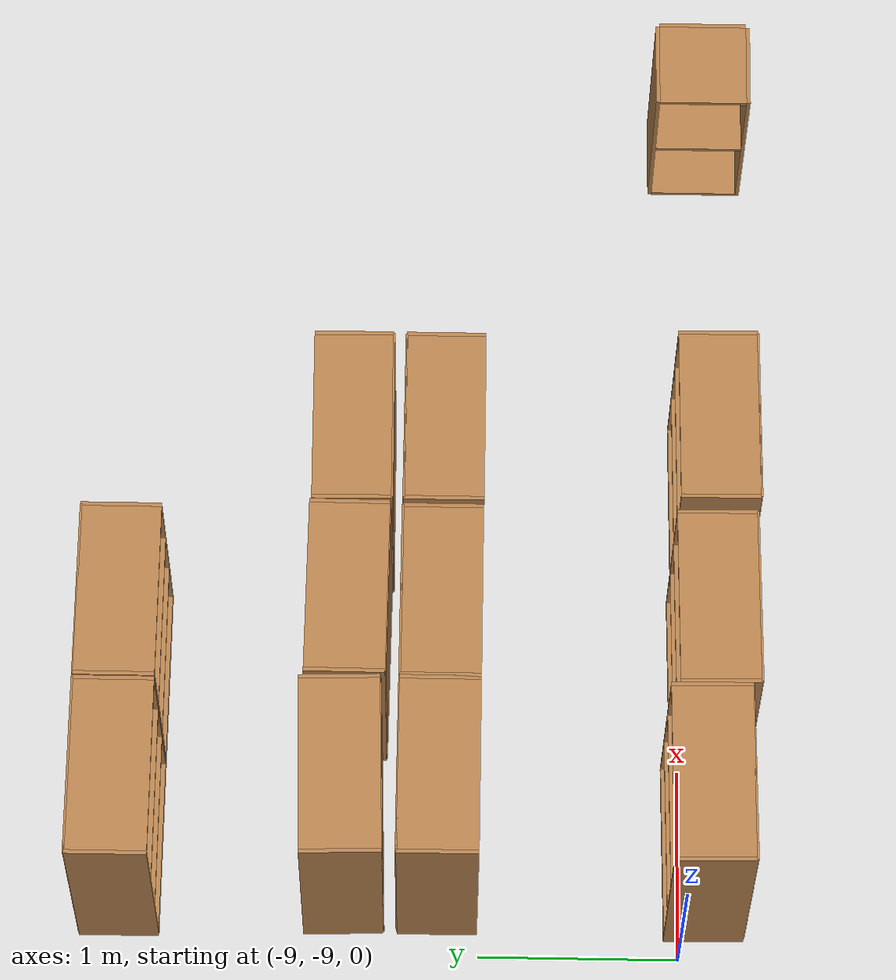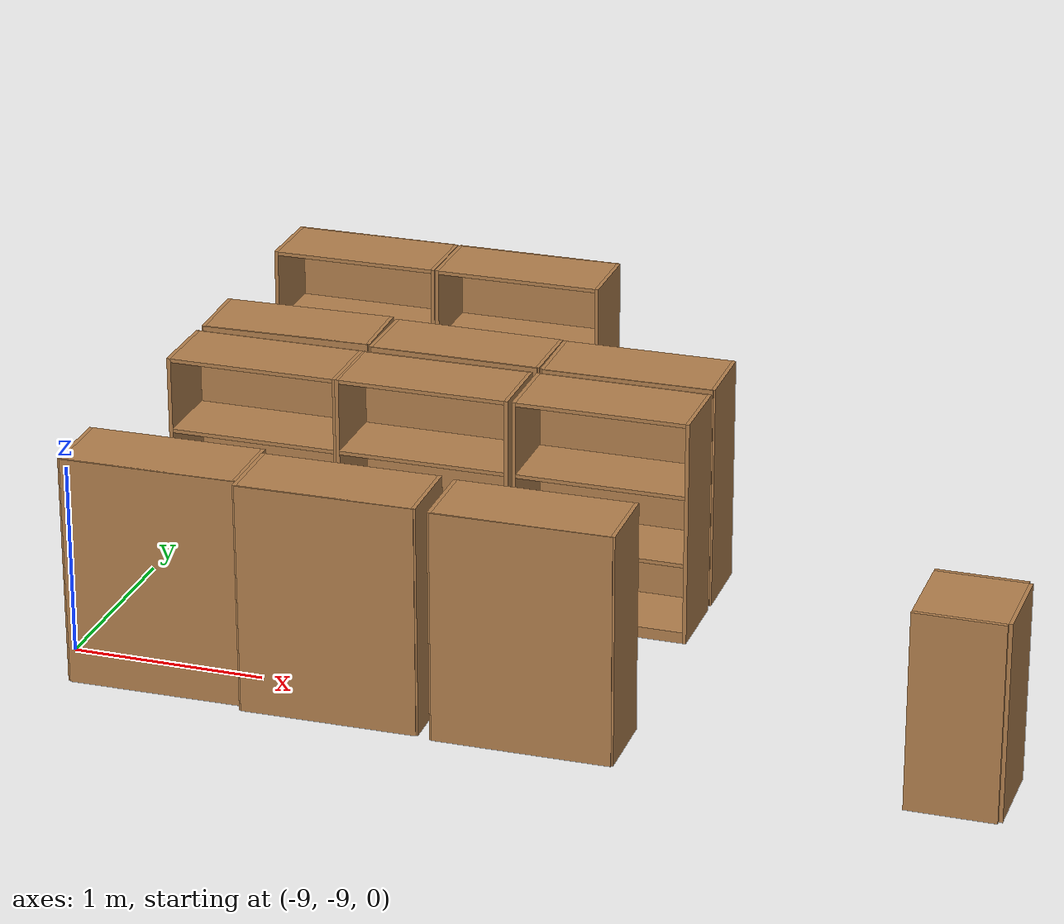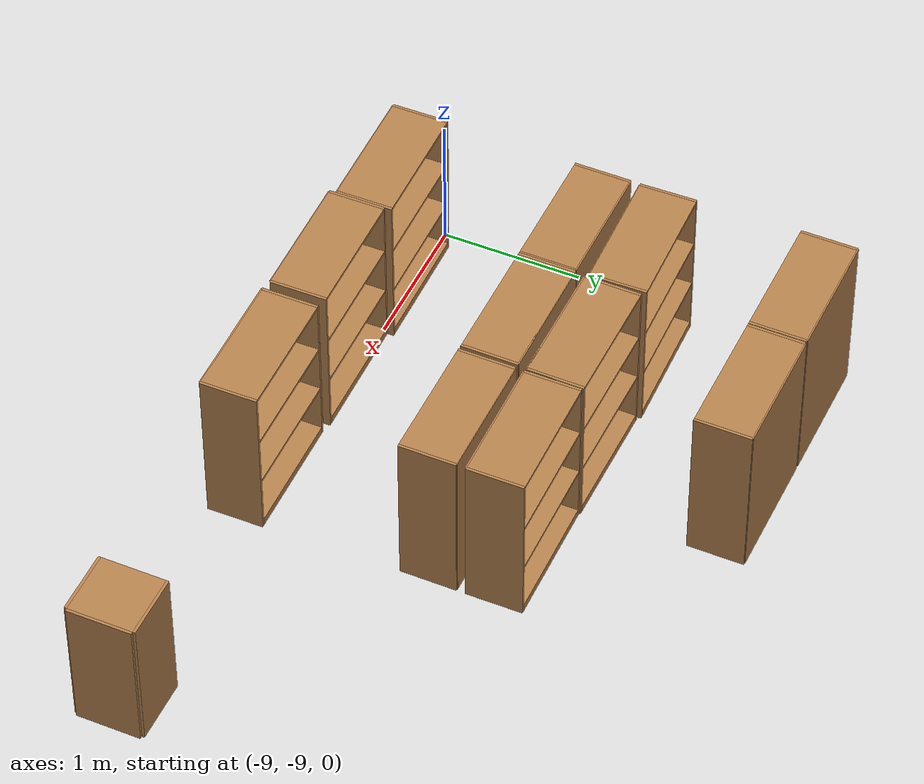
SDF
<sdf version="1.7">
 <world name="default">
  <model name="bookshelf_2">
   <static>1</static>
   <link name="link">
    <inertial><mass>1</mass></inertial>
    <collision name="back">
     <pose>0 0.005 0.6 0 -0 0</pose>
     <geometry><box><size>0.9 0.01 1.2</size></box></geometry>
    </collision>
    <visual name="visual1">
     <pose>0 0.005 0.6 0 -0 0</pose>
     <geometry><box><size>0.9 0.01 1.2</size></box></geometry>
     <material>
      <script><uri>file://media/materials/scripts/gazebo.material</uri><name>Gazebo/Wood</name></script>
     </material>
    </visual>
    <collision name="left_side">
     <pose>0.45 -0.195 0.6 0 -0 0</pose>
     <geometry><box><size>0.02 0.4 1.2</size></box></geometry>
    </collision>
    <visual name="visual2">
     <pose>0.45 -0.195 0.6 0 -0 0</pose>
     <geometry><box><size>0.02 0.4 1.2</size></box></geometry>
     <material>
      <script><uri>file://media/materials/scripts/gazebo.material</uri><name>Gazebo/Wood</name></script>
     </material>
    </visual>
    <collision name="right_side">
     <pose>-0.45 -0.195 0.6 0 -0 0</pose>
     <geometry><box><size>0.02 0.4 1.2</size></box></geometry>
    </collision>
    <visual name="visual3">
     <pose>-0.45 -0.195 0.6 0 -0 0</pose>
     <geometry><box><size>0.02 0.4 1.2</size></box></geometry>
     <material>
      <script><uri>file://media/materials/scripts/gazebo.material</uri><name>Gazebo/Wood</name></script>
     </material>
    </visual>
    <collision name="bottom">
     <pose>0 -0.195 0.03 0 -0 0</pose>
     <geometry><box><size>0.88 0.4 0.06</size></box></geometry>
    </collision>
    <visual name="visual4">
     <pose>0 -0.195 0.03 0 -0 0</pose>
     <geometry><box><size>0.88 0.4 0.06</size></box></geometry>
     <material>
      <script><uri>file://media/materials/scripts/gazebo.material</uri><name>Gazebo/Wood</name></script>
     </material>
    </visual>
    <collision name="top">
     <pose>0 -0.195 1.19 0 -0 0</pose>
     <geometry><box><size>0.88 0.4 0.02</size></box></geometry>
    </collision>
    <visual name="visual5">
     <pose>0 -0.195 1.19 0 -0 0</pose>
     <geometry><box><size>0.88 0.4 0.02</size></box></geometry>
     <material>
      <script><uri>file://media/materials/scripts/gazebo.material</uri><name>Gazebo/Wood</name></script>
     </material>
    </visual>
    <collision name="low_shelf">
     <pose>0 -0.195 0.43 0 -0 0</pose>
     <geometry><box><size>0.88 0.4 0.02</size></box></geometry>
    </collision>
    <visual name="visual6">
     <pose>0 -0.195 0.43 0 -0 0</pose>
     <geometry><box><size>0.88 0.4 0.02</size></box></geometry>
     <material>
      <script><uri>file://media/materials/scripts/gazebo.material</uri><name>Gazebo/Wood</name></script>
     </material>
    </visual>
    <collision name="high_shelf">
     <pose>0 -0.195 0.8 0 -0 0</pose>
     <geometry><box><size>0.88 0.4 0.02</size></box></geometry>
    </collision>
    <visual name="visual7">
     <pose>0 -0.195 0.8 0 -0 0</pose>
     <geometry><box><size>0.88 0.4 0.02</size></box></geometry>
     <material>
      <script><uri>file://media/materials/scripts/gazebo.material</uri><name>Gazebo/Wood</name></script>
     </material>
    </visual>
   </link>
   <pose>-8.45393 -6.00213 0 0 -0 0</pose>
  </model>
  <model name="bookshelf_3">
   <static>1</static>
   <link name="link">
    <inertial><mass>1</mass></inertial>
    <collision name="back">
     <pose>0 0.005 0.6 0 -0 0</pose>
     <geometry><box><size>0.9 0.01 1.2</size></box></geometry>
    </collision>
    <visual name="visual1">
     <pose>0 0.005 0.6 0 -0 0</pose>
     <geometry><box><size>0.9 0.01 1.2</size></box></geometry>
     <material>
      <script><uri>file://media/materials/scripts/gazebo.material</uri><name>Gazebo/Wood</name></script>
     </material>
    </visual>
    <collision name="left_side">
     <pose>0.45 -0.195 0.6 0 -0 0</pose>
     <geometry><box><size>0.02 0.4 1.2</size></box></geometry>
    </collision>
    <visual name="visual2">
     <pose>0.45 -0.195 0.6 0 -0 0</pose>
     <geometry><box><size>0.02 0.4 1.2</size></box></geometry>
     <material>
      <script><uri>file://media/materials/scripts/gazebo.material</uri><name>Gazebo/Wood</name></script>
     </material>
    </visual>
    <collision name="right_side">
     <pose>-0.45 -0.195 0.6 0 -0 0</pose>
     <geometry><box><size>0.02 0.4 1.2</size></box></geometry>
    </collision>
    <visual name="visual3">
     <pose>-0.45 -0.195 0.6 0 -0 0</pose>
     <geometry><box><size>0.02 0.4 1.2</size></box></geometry>
     <material>
      <script><uri>file://media/materials/scripts/gazebo.material</uri><name>Gazebo/Wood</name></script>
     </material>
    </visual>
    <collision name="bottom">
     <pose>0 -0.195 0.03 0 -0 0</pose>
     <geometry><box><size>0.88 0.4 0.06</size></box></geometry>
    </collision>
    <visual name="visual4">
     <pose>0 -0.195 0.03 0 -0 0</pose>
     <geometry><box><size>0.88 0.4 0.06</size></box></geometry>
     <material>
      <script><uri>file://media/materials/scripts/gazebo.material</uri><name>Gazebo/Wood</name></script>
     </material>
    </visual>
    <collision name="top">
     <pose>0 -0.195 1.19 0 -0 0</pose>
     <geometry><box><size>0.88 0.4 0.02</size></box></geometry>
    </collision>
    <visual name="visual5">
     <pose>0 -0.195 1.19 0 -0 0</pose>
     <geometry><box><size>0.88 0.4 0.02</size></box></geometry>
     <material>
      <script><uri>file://media/materials/scripts/gazebo.material</uri><name>Gazebo/Wood</name></script>
     </material>
    </visual>
    <collision name="low_shelf">
     <pose>0 -0.195 0.43 0 -0 0</pose>
     <geometry><box><size>0.88 0.4 0.02</size></box></geometry>
    </collision>
    <visual name="visual6">
     <pose>0 -0.195 0.43 0 -0 0</pose>
     <geometry><box><size>0.88 0.4 0.02</size></box></geometry>
     <material>
      <script><uri>file://media/materials/scripts/gazebo.material</uri><name>Gazebo/Wood</name></script>
     </material>
    </visual>
    <collision name="high_shelf">
     <pose>0 -0.195 0.8 0 -0 0</pose>
     <geometry><box><size>0.88 0.4 0.02</size></box></geometry>
    </collision>
    <visual name="visual7">
     <pose>0 -0.195 0.8 0 -0 0</pose>
     <geometry><box><size>0.88 0.4 0.02</size></box></geometry>
     <material>
      <script><uri>file://media/materials/scripts/gazebo.material</uri><name>Gazebo/Wood</name></script>
     </material>
    </visual>
   </link>
   <pose>-7.5302 -6.00242 0 0 -0 0</pose>
  </model>
  <model name="bookshelf_5">
   <static>1</static>
   <link name="link">
    <inertial><mass>1</mass></inertial>
    <collision name="back">
     <pose>0 0.005 0.6 0 -0 0</pose>
     <geometry><box><size>0.9 0.01 1.2</size></box></geometry>
    </collision>
    <visual name="visual1">
     <pose>0 0.005 0.6 0 -0 0</pose>
     <geometry><box><size>0.9 0.01 1.2</size></box></geometry>
     <material>
      <script><uri>file://media/materials/scripts/gazebo.material</uri><name>Gazebo/Wood</name></script>
     </material>
    </visual>
    <collision name="left_side">
     <pose>0.45 -0.195 0.6 0 -0 0</pose>
     <geometry><box><size>0.02 0.4 1.2</size></box></geometry>
    </collision>
    <visual name="visual2">
     <pose>0.45 -0.195 0.6 0 -0 0</pose>
     <geometry><box><size>0.02 0.4 1.2</size></box></geometry>
     <material>
      <script><uri>file://media/materials/scripts/gazebo.material</uri><name>Gazebo/Wood</name></script>
     </material>
    </visual>
    <collision name="right_side">
     <pose>-0.45 -0.195 0.6 0 -0 0</pose>
     <geometry><box><size>0.02 0.4 1.2</size></box></geometry>
    </collision>
    <visual name="visual3">
     <pose>-0.45 -0.195 0.6 0 -0 0</pose>
     <geometry><box><size>0.02 0.4 1.2</size></box></geometry>
     <material>
      <script><uri>file://media/materials/scripts/gazebo.material</uri><name>Gazebo/Wood</name></script>
     </material>
    </visual>
    <collision name="bottom">
     <pose>0 -0.195 0.03 0 -0 0</pose>
     <geometry><box><size>0.88 0.4 0.06</size></box></geometry>
    </collision>
    <visual name="visual4">
     <pose>0 -0.195 0.03 0 -0 0</pose>
     <geometry><box><size>0.88 0.4 0.06</size></box></geometry>
     <material>
      <script><uri>file://media/materials/scripts/gazebo.material</uri><name>Gazebo/Wood</name></script>
     </material>
    </visual>
    <collision name="top">
     <pose>0 -0.195 1.19 0 -0 0</pose>
     <geometry><box><size>0.88 0.4 0.02</size></box></geometry>
    </collision>
    <visual name="visual5">
     <pose>0 -0.195 1.19 0 -0 0</pose>
     <geometry><box><size>0.88 0.4 0.02</size></box></geometry>
     <material>
      <script><uri>file://media/materials/scripts/gazebo.material</uri><name>Gazebo/Wood</name></script>
     </material>
    </visual>
    <collision name="low_shelf">
     <pose>0 -0.195 0.43 0 -0 0</pose>
     <geometry><box><size>0.88 0.4 0.02</size></box></geometry>
    </collision>
    <visual name="visual6">
     <pose>0 -0.195 0.43 0 -0 0</pose>
     <geometry><box><size>0.88 0.4 0.02</size></box></geometry>
     <material>
      <script><uri>file://media/materials/scripts/gazebo.material</uri><name>Gazebo/Wood</name></script>
     </material>
    </visual>
    <collision name="high_shelf">
     <pose>0 -0.195 0.8 0 -0 0</pose>
     <geometry><box><size>0.88 0.4 0.02</size></box></geometry>
    </collision>
    <visual name="visual7">
     <pose>0 -0.195 0.8 0 -0 0</pose>
     <geometry><box><size>0.88 0.4 0.02</size></box></geometry>
     <material>
      <script><uri>file://media/materials/scripts/gazebo.material</uri><name>Gazebo/Wood</name></script>
     </material>
    </visual>
   </link>
   <pose>-8.42282 -7.59521 0 0 -0 0</pose>
  </model>
  <model name="bookshelf_6">
   <static>1</static>
   <link name="link">
    <inertial><mass>1</mass></inertial>
    <collision name="back">
     <pose>0 0.005 0.6 0 -0 0</pose>
     <geometry><box><size>0.9 0.01 1.2</size></box></geometry>
    </collision>
    <visual name="visual1">
     <pose>0 0.005 0.6 0 -0 0</pose>
     <geometry><box><size>0.9 0.01 1.2</size></box></geometry>
     <material>
      <script><uri>file://media/materials/scripts/gazebo.material</uri><name>Gazebo/Wood</name></script>
     </material>
    </visual>
    <collision name="left_side">
     <pose>0.45 -0.195 0.6 0 -0 0</pose>
     <geometry><box><size>0.02 0.4 1.2</size></box></geometry>
    </collision>
    <visual name="visual2">
     <pose>0.45 -0.195 0.6 0 -0 0</pose>
     <geometry><box><size>0.02 0.4 1.2</size></box></geometry>
     <material>
      <script><uri>file://media/materials/scripts/gazebo.material</uri><name>Gazebo/Wood</name></script>
     </material>
    </visual>
    <collision name="right_side">
     <pose>-0.45 -0.195 0.6 0 -0 0</pose>
     <geometry><box><size>0.02 0.4 1.2</size></box></geometry>
    </collision>
    <visual name="visual3">
     <pose>-0.45 -0.195 0.6 0 -0 0</pose>
     <geometry><box><size>0.02 0.4 1.2</size></box></geometry>
     <material>
      <script><uri>file://media/materials/scripts/gazebo.material</uri><name>Gazebo/Wood</name></script>
     </material>
    </visual>
    <collision name="bottom">
     <pose>0 -0.195 0.03 0 -0 0</pose>
     <geometry><box><size>0.88 0.4 0.06</size></box></geometry>
    </collision>
    <visual name="visual4">
     <pose>0 -0.195 0.03 0 -0 0</pose>
     <geometry><box><size>0.88 0.4 0.06</size></box></geometry>
     <material>
      <script><uri>file://media/materials/scripts/gazebo.material</uri><name>Gazebo/Wood</name></script>
     </material>
    </visual>
    <collision name="top">
     <pose>0 -0.195 1.19 0 -0 0</pose>
     <geometry><box><size>0.88 0.4 0.02</size></box></geometry>
    </collision>
    <visual name="visual5">
     <pose>0 -0.195 1.19 0 -0 0</pose>
     <geometry><box><size>0.88 0.4 0.02</size></box></geometry>
     <material>
      <script><uri>file://media/materials/scripts/gazebo.material</uri><name>Gazebo/Wood</name></script>
     </material>
    </visual>
    <collision name="low_shelf">
     <pose>0 -0.195 0.43 0 -0 0</pose>
     <geometry><box><size>0.88 0.4 0.02</size></box></geometry>
    </collision>
    <visual name="visual6">
     <pose>0 -0.195 0.43 0 -0 0</pose>
     <geometry><box><size>0.88 0.4 0.02</size></box></geometry>
     <material>
      <script><uri>file://media/materials/scripts/gazebo.material</uri><name>Gazebo/Wood</name></script>
     </material>
    </visual>
    <collision name="high_shelf">
     <pose>0 -0.195 0.8 0 -0 0</pose>
     <geometry><box><size>0.88 0.4 0.02</size></box></geometry>
    </collision>
    <visual name="visual7">
     <pose>0 -0.195 0.8 0 -0 0</pose>
     <geometry><box><size>0.88 0.4 0.02</size></box></geometry>
     <material>
      <script><uri>file://media/materials/scripts/gazebo.material</uri><name>Gazebo/Wood</name></script>
     </material>
    </visual>
   </link>
   <pose>-7.50944 -7.59535 0 0 -0 0</pose>
  </model>
  <model name="bookshelf_7">
   <static>1</static>
   <link name="link">
    <inertial><mass>1</mass></inertial>
    <collision name="back">
     <pose>0 0.005 0.6 0 -0 0</pose>
     <geometry><box><size>0.9 0.01 1.2</size></box></geometry>
    </collision>
    <visual name="visual1">
     <pose>0 0.005 0.6 0 -0 0</pose>
     <geometry><box><size>0.9 0.01 1.2</size></box></geometry>
     <material>
      <script><uri>file://media/materials/scripts/gazebo.material</uri><name>Gazebo/Wood</name></script>
     </material>
    </visual>
    <collision name="left_side">
     <pose>0.45 -0.195 0.6 0 -0 0</pose>
     <geometry><box><size>0.02 0.4 1.2</size></box></geometry>
    </collision>
    <visual name="visual2">
     <pose>0.45 -0.195 0.6 0 -0 0</pose>
     <geometry><box><size>0.02 0.4 1.2</size></box></geometry>
     <material>
      <script><uri>file://media/materials/scripts/gazebo.material</uri><name>Gazebo/Wood</name></script>
     </material>
    </visual>
    <collision name="right_side">
     <pose>-0.45 -0.195 0.6 0 -0 0</pose>
     <geometry><box><size>0.02 0.4 1.2</size></box></geometry>
    </collision>
    <visual name="visual3">
     <pose>-0.45 -0.195 0.6 0 -0 0</pose>
     <geometry><box><size>0.02 0.4 1.2</size></box></geometry>
     <material>
      <script><uri>file://media/materials/scripts/gazebo.material</uri><name>Gazebo/Wood</name></script>
     </material>
    </visual>
    <collision name="bottom">
     <pose>0 -0.195 0.03 0 -0 0</pose>
     <geometry><box><size>0.88 0.4 0.06</size></box></geometry>
    </collision>
    <visual name="visual4">
     <pose>0 -0.195 0.03 0 -0 0</pose>
     <geometry><box><size>0.88 0.4 0.06</size></box></geometry>
     <material>
      <script><uri>file://media/materials/scripts/gazebo.material</uri><name>Gazebo/Wood</name></script>
     </material>
    </visual>
    <collision name="top">
     <pose>0 -0.195 1.19 0 -0 0</pose>
     <geometry><box><size>0.88 0.4 0.02</size></box></geometry>
    </collision>
    <visual name="visual5">
     <pose>0 -0.195 1.19 0 -0 0</pose>
     <geometry><box><size>0.88 0.4 0.02</size></box></geometry>
     <material>
      <script><uri>file://media/materials/scripts/gazebo.material</uri><name>Gazebo/Wood</name></script>
     </material>
    </visual>
    <collision name="low_shelf">
     <pose>0 -0.195 0.43 0 -0 0</pose>
     <geometry><box><size>0.88 0.4 0.02</size></box></geometry>
    </collision>
    <visual name="visual6">
     <pose>0 -0.195 0.43 0 -0 0</pose>
     <geometry><box><size>0.88 0.4 0.02</size></box></geometry>
     <material>
      <script><uri>file://media/materials/scripts/gazebo.material</uri><name>Gazebo/Wood</name></script>
     </material>
    </visual>
    <collision name="high_shelf">
     <pose>0 -0.195 0.8 0 -0 0</pose>
     <geometry><box><size>0.88 0.4 0.02</size></box></geometry>
    </collision>
    <visual name="visual7">
     <pose>0 -0.195 0.8 0 -0 0</pose>
     <geometry><box><size>0.88 0.4 0.02</size></box></geometry>
     <material>
      <script><uri>file://media/materials/scripts/gazebo.material</uri><name>Gazebo/Wood</name></script>
     </material>
    </visual>
   </link>
   <pose>-6.56754 -7.59716 0 0 -0 0</pose>
  </model>
  <model name="bookshelf_11">
   <static>1</static>
   <link name="link">
    <inertial><mass>1</mass></inertial>
    <collision name="back">
     <pose>0 0.005 0.6 0 -0 0</pose>
     <geometry><box><size>0.9 0.01 1.2</size></box></geometry>
    </collision>
    <visual name="visual1">
     <pose>0 0.005 0.6 0 -0 0</pose>
     <geometry><box><size>0.9 0.01 1.2</size></box></geometry>
     <material>
      <script><uri>file://media/materials/scripts/gazebo.material</uri><name>Gazebo/Wood</name></script>
     </material>
    </visual>
    <collision name="left_side">
     <pose>0.45 -0.195 0.6 0 -0 0</pose>
     <geometry><box><size>0.02 0.4 1.2</size></box></geometry>
    </collision>
    <visual name="visual2">
     <pose>0.45 -0.195 0.6 0 -0 0</pose>
     <geometry><box><size>0.02 0.4 1.2</size></box></geometry>
     <material>
      <script><uri>file://media/materials/scripts/gazebo.material</uri><name>Gazebo/Wood</name></script>
     </material>
    </visual>
    <collision name="right_side">
     <pose>-0.45 -0.195 0.6 0 -0 0</pose>
     <geometry><box><size>0.02 0.4 1.2</size></box></geometry>
    </collision>
    <visual name="visual3">
     <pose>-0.45 -0.195 0.6 0 -0 0</pose>
     <geometry><box><size>0.02 0.4 1.2</size></box></geometry>
     <material>
      <script><uri>file://media/materials/scripts/gazebo.material</uri><name>Gazebo/Wood</name></script>
     </material>
    </visual>
    <collision name="bottom">
     <pose>0 -0.195 0.03 0 -0 0</pose>
     <geometry><box><size>0.88 0.4 0.06</size></box></geometry>
    </collision>
    <visual name="visual4">
     <pose>0 -0.195 0.03 0 -0 0</pose>
     <geometry><box><size>0.88 0.4 0.06</size></box></geometry>
     <material>
      <script><uri>file://media/materials/scripts/gazebo.material</uri><name>Gazebo/Wood</name></script>
     </material>
    </visual>
    <collision name="top">
     <pose>0 -0.195 1.19 0 -0 0</pose>
     <geometry><box><size>0.88 0.4 0.02</size></box></geometry>
    </collision>
    <visual name="visual5">
     <pose>0 -0.195 1.19 0 -0 0</pose>
     <geometry><box><size>0.88 0.4 0.02</size></box></geometry>
     <material>
      <script><uri>file://media/materials/scripts/gazebo.material</uri><name>Gazebo/Wood</name></script>
     </material>
    </visual>
    <collision name="low_shelf">
     <pose>0 -0.195 0.43 0 -0 0</pose>
     <geometry><box><size>0.88 0.4 0.02</size></box></geometry>
    </collision>
    <visual name="visual6">
     <pose>0 -0.195 0.43 0 -0 0</pose>
     <geometry><box><size>0.88 0.4 0.02</size></box></geometry>
     <material>
      <script><uri>file://media/materials/scripts/gazebo.material</uri><name>Gazebo/Wood</name></script>
     </material>
    </visual>
    <collision name="high_shelf">
     <pose>0 -0.195 0.8 0 -0 0</pose>
     <geometry><box><size>0.88 0.4 0.02</size></box></geometry>
    </collision>
    <visual name="visual7">
     <pose>0 -0.195 0.8 0 -0 0</pose>
     <geometry><box><size>0.88 0.4 0.02</size></box></geometry>
     <material>
      <script><uri>file://media/materials/scripts/gazebo.material</uri><name>Gazebo/Wood</name></script>
     </material>
    </visual>
   </link>
   <pose>-6.56652 -7.52688 0 0 0 -3.13362</pose>
  </model>
  <model name="bookshelf_12">
   <static>1</static>
   <link name="link">
    <inertial><mass>1</mass></inertial>
    <collision name="back">
     <pose>0 0.005 0.6 0 -0 0</pose>
     <geometry><box><size>0.9 0.01 1.2</size></box></geometry>
    </collision>
    <visual name="visual1">
     <pose>0 0.005 0.6 0 -0 0</pose>
     <geometry><box><size>0.9 0.01 1.2</size></box></geometry>
     <material>
      <script><uri>file://media/materials/scripts/gazebo.material</uri><name>Gazebo/Wood</name></script>
     </material>
    </visual>
    <collision name="left_side">
     <pose>0.45 -0.195 0.6 0 -0 0</pose>
     <geometry><box><size>0.02 0.4 1.2</size></box></geometry>
    </collision>
    <visual name="visual2">
     <pose>0.45 -0.195 0.6 0 -0 0</pose>
     <geometry><box><size>0.02 0.4 1.2</size></box></geometry>
     <material>
      <script><uri>file://media/materials/scripts/gazebo.material</uri><name>Gazebo/Wood</name></script>
     </material>
    </visual>
    <collision name="right_side">
     <pose>-0.45 -0.195 0.6 0 -0 0</pose>
     <geometry><box><size>0.02 0.4 1.2</size></box></geometry>
    </collision>
    <visual name="visual3">
     <pose>-0.45 -0.195 0.6 0 -0 0</pose>
     <geometry><box><size>0.02 0.4 1.2</size></box></geometry>
     <material>
      <script><uri>file://media/materials/scripts/gazebo.material</uri><name>Gazebo/Wood</name></script>
     </material>
    </visual>
    <collision name="bottom">
     <pose>0 -0.195 0.03 0 -0 0</pose>
     <geometry><box><size>0.88 0.4 0.06</size></box></geometry>
    </collision>
    <visual name="visual4">
     <pose>0 -0.195 0.03 0 -0 0</pose>
     <geometry><box><size>0.88 0.4 0.06</size></box></geometry>
     <material>
      <script><uri>file://media/materials/scripts/gazebo.material</uri><name>Gazebo/Wood</name></script>
     </material>
    </visual>
    <collision name="top">
     <pose>0 -0.195 1.19 0 -0 0</pose>
     <geometry><box><size>0.88 0.4 0.02</size></box></geometry>
    </collision>
    <visual name="visual5">
     <pose>0 -0.195 1.19 0 -0 0</pose>
     <geometry><box><size>0.88 0.4 0.02</size></box></geometry>
     <material>
      <script><uri>file://media/materials/scripts/gazebo.material</uri><name>Gazebo/Wood</name></script>
     </material>
    </visual>
    <collision name="low_shelf">
     <pose>0 -0.195 0.43 0 -0 0</pose>
     <geometry><box><size>0.88 0.4 0.02</size></box></geometry>
    </collision>
    <visual name="visual6">
     <pose>0 -0.195 0.43 0 -0 0</pose>
     <geometry><box><size>0.88 0.4 0.02</size></box></geometry>
     <material>
      <script><uri>file://media/materials/scripts/gazebo.material</uri><name>Gazebo/Wood</name></script>
     </material>
    </visual>
    <collision name="high_shelf">
     <pose>0 -0.195 0.8 0 -0 0</pose>
     <geometry><box><size>0.88 0.4 0.02</size></box></geometry>
    </collision>
    <visual name="visual7">
     <pose>0 -0.195 0.8 0 -0 0</pose>
     <geometry><box><size>0.88 0.4 0.02</size></box></geometry>
     <material>
      <script><uri>file://media/materials/scripts/gazebo.material</uri><name>Gazebo/Wood</name></script>
     </material>
    </visual>
   </link>
   <pose>-7.49522 -7.51776 0 0 -0 3.13394</pose>
  </model>
  <model name="bookshelf_13">
   <static>1</static>
   <link name="link">
    <inertial><mass>1</mass></inertial>
    <collision name="back">
     <pose>0 0.005 0.6 0 -0 0</pose>
     <geometry><box><size>0.9 0.01 1.2</size></box></geometry>
    </collision>
    <visual name="visual1">
     <pose>0 0.005 0.6 0 -0 0</pose>
     <geometry><box><size>0.9 0.01 1.2</size></box></geometry>
     <material>
      <script><uri>file://media/materials/scripts/gazebo.material</uri><name>Gazebo/Wood</name></script>
     </material>
    </visual>
    <collision name="left_side">
     <pose>0.45 -0.195 0.6 0 -0 0</pose>
     <geometry><box><size>0.02 0.4 1.2</size></box></geometry>
    </collision>
    <visual name="visual2">
     <pose>0.45 -0.195 0.6 0 -0 0</pose>
     <geometry><box><size>0.02 0.4 1.2</size></box></geometry>
     <material>
      <script><uri>file://media/materials/scripts/gazebo.material</uri><name>Gazebo/Wood</name></script>
     </material>
    </visual>
    <collision name="right_side">
     <pose>-0.45 -0.195 0.6 0 -0 0</pose>
     <geometry><box><size>0.02 0.4 1.2</size></box></geometry>
    </collision>
    <visual name="visual3">
     <pose>-0.45 -0.195 0.6 0 -0 0</pose>
     <geometry><box><size>0.02 0.4 1.2</size></box></geometry>
     <material>
      <script><uri>file://media/materials/scripts/gazebo.material</uri><name>Gazebo/Wood</name></script>
     </material>
    </visual>
    <collision name="bottom">
     <pose>0 -0.195 0.03 0 -0 0</pose>
     <geometry><box><size>0.88 0.4 0.06</size></box></geometry>
    </collision>
    <visual name="visual4">
     <pose>0 -0.195 0.03 0 -0 0</pose>
     <geometry><box><size>0.88 0.4 0.06</size></box></geometry>
     <material>
      <script><uri>file://media/materials/scripts/gazebo.material</uri><name>Gazebo/Wood</name></script>
     </material>
    </visual>
    <collision name="top">
     <pose>0 -0.195 1.19 0 -0 0</pose>
     <geometry><box><size>0.88 0.4 0.02</size></box></geometry>
    </collision>
    <visual name="visual5">
     <pose>0 -0.195 1.19 0 -0 0</pose>
     <geometry><box><size>0.88 0.4 0.02</size></box></geometry>
     <material>
      <script><uri>file://media/materials/scripts/gazebo.material</uri><name>Gazebo/Wood</name></script>
     </material>
    </visual>
    <collision name="low_shelf">
     <pose>0 -0.195 0.43 0 -0 0</pose>
     <geometry><box><size>0.88 0.4 0.02</size></box></geometry>
    </collision>
    <visual name="visual6">
     <pose>0 -0.195 0.43 0 -0 0</pose>
     <geometry><box><size>0.88 0.4 0.02</size></box></geometry>
     <material>
      <script><uri>file://media/materials/scripts/gazebo.material</uri><name>Gazebo/Wood</name></script>
     </material>
    </visual>
    <collision name="high_shelf">
     <pose>0 -0.195 0.8 0 -0 0</pose>
     <geometry><box><size>0.88 0.4 0.02</size></box></geometry>
    </collision>
    <visual name="visual7">
     <pose>0 -0.195 0.8 0 -0 0</pose>
     <geometry><box><size>0.88 0.4 0.02</size></box></geometry>
     <material>
      <script><uri>file://media/materials/scripts/gazebo.material</uri><name>Gazebo/Wood</name></script>
     </material>
    </visual>
   </link>
   <pose>-8.42123 -7.50347 0 0 0 -3.11299</pose>
  </model>
  <model name="bookshelf_14">
   <static>1</static>
   <link name="link">
    <inertial><mass>1</mass></inertial>
    <collision name="back">
     <pose>0 0.005 0.6 0 -0 0</pose>
     <geometry><box><size>0.9 0.01 1.2</size></box></geometry>
    </collision>
    <visual name="visual1">
     <pose>0 0.005 0.6 0 -0 0</pose>
     <geometry><box><size>0.9 0.01 1.2</size></box></geometry>
     <material>
      <script><uri>file://media/materials/scripts/gazebo.material</uri><name>Gazebo/Wood</name></script>
     </material>
    </visual>
    <collision name="left_side">
     <pose>0.45 -0.195 0.6 0 -0 0</pose>
     <geometry><box><size>0.02 0.4 1.2</size></box></geometry>
    </collision>
    <visual name="visual2">
     <pose>0.45 -0.195 0.6 0 -0 0</pose>
     <geometry><box><size>0.02 0.4 1.2</size></box></geometry>
     <material>
      <script><uri>file://media/materials/scripts/gazebo.material</uri><name>Gazebo/Wood</name></script>
     </material>
    </visual>
    <collision name="right_side">
     <pose>-0.45 -0.195 0.6 0 -0 0</pose>
     <geometry><box><size>0.02 0.4 1.2</size></box></geometry>
    </collision>
    <visual name="visual3">
     <pose>-0.45 -0.195 0.6 0 -0 0</pose>
     <geometry><box><size>0.02 0.4 1.2</size></box></geometry>
     <material>
      <script><uri>file://media/materials/scripts/gazebo.material</uri><name>Gazebo/Wood</name></script>
     </material>
    </visual>
    <collision name="bottom">
     <pose>0 -0.195 0.03 0 -0 0</pose>
     <geometry><box><size>0.88 0.4 0.06</size></box></geometry>
    </collision>
    <visual name="visual4">
     <pose>0 -0.195 0.03 0 -0 0</pose>
     <geometry><box><size>0.88 0.4 0.06</size></box></geometry>
     <material>
      <script><uri>file://media/materials/scripts/gazebo.material</uri><name>Gazebo/Wood</name></script>
     </material>
    </visual>
    <collision name="top">
     <pose>0 -0.195 1.19 0 -0 0</pose>
     <geometry><box><size>0.88 0.4 0.02</size></box></geometry>
    </collision>
    <visual name="visual5">
     <pose>0 -0.195 1.19 0 -0 0</pose>
     <geometry><box><size>0.88 0.4 0.02</size></box></geometry>
     <material>
      <script><uri>file://media/materials/scripts/gazebo.material</uri><name>Gazebo/Wood</name></script>
     </material>
    </visual>
    <collision name="low_shelf">
     <pose>0 -0.195 0.43 0 -0 0</pose>
     <geometry><box><size>0.88 0.4 0.02</size></box></geometry>
    </collision>
    <visual name="visual6">
     <pose>0 -0.195 0.43 0 -0 0</pose>
     <geometry><box><size>0.88 0.4 0.02</size></box></geometry>
     <material>
      <script><uri>file://media/materials/scripts/gazebo.material</uri><name>Gazebo/Wood</name></script>
     </material>
    </visual>
    <collision name="high_shelf">
     <pose>0 -0.195 0.8 0 -0 0</pose>
     <geometry><box><size>0.88 0.4 0.02</size></box></geometry>
    </collision>
    <visual name="visual7">
     <pose>0 -0.195 0.8 0 -0 0</pose>
     <geometry><box><size>0.88 0.4 0.02</size></box></geometry>
     <material>
      <script><uri>file://media/materials/scripts/gazebo.material</uri><name>Gazebo/Wood</name></script>
     </material>
    </visual>
   </link>
   <pose>-6.53247 -9.35794 0 0 0 -3.13133</pose>
  </model>
  <model name="bookshelf_15">
   <static>1</static>
   <link name="link">
    <inertial><mass>1</mass></inertial>
    <collision name="back">
     <pose>0 0.005 0.6 0 -0 0</pose>
     <geometry><box><size>0.9 0.01 1.2</size></box></geometry>
    </collision>
    <visual name="visual1">
     <pose>0 0.005 0.6 0 -0 0</pose>
     <geometry><box><size>0.9 0.01 1.2</size></box></geometry>
     <material>
      <script><uri>file://media/materials/scripts/gazebo.material</uri><name>Gazebo/Wood</name></script>
     </material>
    </visual>
    <collision name="left_side">
     <pose>0.45 -0.195 0.6 0 -0 0</pose>
     <geometry><box><size>0.02 0.4 1.2</size></box></geometry>
    </collision>
    <visual name="visual2">
     <pose>0.45 -0.195 0.6 0 -0 0</pose>
     <geometry><box><size>0.02 0.4 1.2</size></box></geometry>
     <material>
      <script><uri>file://media/materials/scripts/gazebo.material</uri><name>Gazebo/Wood</name></script>
     </material>
    </visual>
    <collision name="right_side">
     <pose>-0.45 -0.195 0.6 0 -0 0</pose>
     <geometry><box><size>0.02 0.4 1.2</size></box></geometry>
    </collision>
    <visual name="visual3">
     <pose>-0.45 -0.195 0.6 0 -0 0</pose>
     <geometry><box><size>0.02 0.4 1.2</size></box></geometry>
     <material>
      <script><uri>file://media/materials/scripts/gazebo.material</uri><name>Gazebo/Wood</name></script>
     </material>
    </visual>
    <collision name="bottom">
     <pose>0 -0.195 0.03 0 -0 0</pose>
     <geometry><box><size>0.88 0.4 0.06</size></box></geometry>
    </collision>
    <visual name="visual4">
     <pose>0 -0.195 0.03 0 -0 0</pose>
     <geometry><box><size>0.88 0.4 0.06</size></box></geometry>
     <material>
      <script><uri>file://media/materials/scripts/gazebo.material</uri><name>Gazebo/Wood</name></script>
     </material>
    </visual>
    <collision name="top">
     <pose>0 -0.195 1.19 0 -0 0</pose>
     <geometry><box><size>0.88 0.4 0.02</size></box></geometry>
    </collision>
    <visual name="visual5">
     <pose>0 -0.195 1.19 0 -0 0</pose>
     <geometry><box><size>0.88 0.4 0.02</size></box></geometry>
     <material>
      <script><uri>file://media/materials/scripts/gazebo.material</uri><name>Gazebo/Wood</name></script>
     </material>
    </visual>
    <collision name="low_shelf">
     <pose>0 -0.195 0.43 0 -0 0</pose>
     <geometry><box><size>0.88 0.4 0.02</size></box></geometry>
    </collision>
    <visual name="visual6">
     <pose>0 -0.195 0.43 0 -0 0</pose>
     <geometry><box><size>0.88 0.4 0.02</size></box></geometry>
     <material>
      <script><uri>file://media/materials/scripts/gazebo.material</uri><name>Gazebo/Wood</name></script>
     </material>
    </visual>
    <collision name="high_shelf">
     <pose>0 -0.195 0.8 0 -0 0</pose>
     <geometry><box><size>0.88 0.4 0.02</size></box></geometry>
    </collision>
    <visual name="visual7">
     <pose>0 -0.195 0.8 0 -0 0</pose>
     <geometry><box><size>0.88 0.4 0.02</size></box></geometry>
     <material>
      <script><uri>file://media/materials/scripts/gazebo.material</uri><name>Gazebo/Wood</name></script>
     </material>
    </visual>
   </link>
   <pose>-7.51645 -9.34879 0 0 -0 -3.12813</pose>
  </model>
  <model name="bookshelf_16">
   <static>1</static>
   <link name="link">
    <inertial><mass>1</mass></inertial>
    <collision name="back">
     <pose>0 0.005 0.6 0 -0 0</pose>
     <geometry><box><size>0.9 0.01 1.2</size></box></geometry>
    </collision>
    <visual name="visual1">
     <pose>0 0.005 0.6 0 -0 0</pose>
     <geometry><box><size>0.9 0.01 1.2</size></box></geometry>
     <material>
      <script><uri>file://media/materials/scripts/gazebo.material</uri><name>Gazebo/Wood</name></script>
     </material>
    </visual>
    <collision name="left_side">
     <pose>0.45 -0.195 0.6 0 -0 0</pose>
     <geometry><box><size>0.02 0.4 1.2</size></box></geometry>
    </collision>
    <visual name="visual2">
     <pose>0.45 -0.195 0.6 0 -0 0</pose>
     <geometry><box><size>0.02 0.4 1.2</size></box></geometry>
     <material>
      <script><uri>file://media/materials/scripts/gazebo.material</uri><name>Gazebo/Wood</name></script>
     </material>
    </visual>
    <collision name="right_side">
     <pose>-0.45 -0.195 0.6 0 -0 0</pose>
     <geometry><box><size>0.02 0.4 1.2</size></box></geometry>
    </collision>
    <visual name="visual3">
     <pose>-0.45 -0.195 0.6 0 -0 0</pose>
     <geometry><box><size>0.02 0.4 1.2</size></box></geometry>
     <material>
      <script><uri>file://media/materials/scripts/gazebo.material</uri><name>Gazebo/Wood</name></script>
     </material>
    </visual>
    <collision name="bottom">
     <pose>0 -0.195 0.03 0 -0 0</pose>
     <geometry><box><size>0.88 0.4 0.06</size></box></geometry>
    </collision>
    <visual name="visual4">
     <pose>0 -0.195 0.03 0 -0 0</pose>
     <geometry><box><size>0.88 0.4 0.06</size></box></geometry>
     <material>
      <script><uri>file://media/materials/scripts/gazebo.material</uri><name>Gazebo/Wood</name></script>
     </material>
    </visual>
    <collision name="top">
     <pose>0 -0.195 1.19 0 -0 0</pose>
     <geometry><box><size>0.88 0.4 0.02</size></box></geometry>
    </collision>
    <visual name="visual5">
     <pose>0 -0.195 1.19 0 -0 0</pose>
     <geometry><box><size>0.88 0.4 0.02</size></box></geometry>
     <material>
      <script><uri>file://media/materials/scripts/gazebo.material</uri><name>Gazebo/Wood</name></script>
     </material>
    </visual>
    <collision name="low_shelf">
     <pose>0 -0.195 0.43 0 -0 0</pose>
     <geometry><box><size>0.88 0.4 0.02</size></box></geometry>
    </collision>
    <visual name="visual6">
     <pose>0 -0.195 0.43 0 -0 0</pose>
     <geometry><box><size>0.88 0.4 0.02</size></box></geometry>
     <material>
      <script><uri>file://media/materials/scripts/gazebo.material</uri><name>Gazebo/Wood</name></script>
     </material>
    </visual>
    <collision name="high_shelf">
     <pose>0 -0.195 0.8 0 -0 0</pose>
     <geometry><box><size>0.88 0.4 0.02</size></box></geometry>
    </collision>
    <visual name="visual7">
     <pose>0 -0.195 0.8 0 -0 0</pose>
     <geometry><box><size>0.88 0.4 0.02</size></box></geometry>
     <material>
      <script><uri>file://media/materials/scripts/gazebo.material</uri><name>Gazebo/Wood</name></script>
     </material>
    </visual>
   </link>
   <pose>-8.4343 -9.31458 0 0 0 -3.12814</pose>
  </model>
  <model name="cabinet">
   <static>1</static>
   <link name="cabinet_bottom_plate">
    <inertial>
     <pose>0 0 -1 0 -0 0</pose>
     <inertia><ixx>2.05</ixx><ixy>0</ixy><ixz>0</ixz><iyy>2.05</iyy><iyz>0</iyz><izz>2.05</izz></inertia>
     <mass>25</mass>
    </inertial>
    <collision name="cabinet_bottom_plate_geom">
     <pose>0 0 0.01 0 -0 0</pose>
     <geometry><box><size>0.45 0.45 0.02</size></box></geometry>
    </collision>
    <visual name="cabinet_bottom_plate_geom_visual">
     <pose>0 0 0.01 0 -0 0</pose>
     <geometry><box><size>0.45 0.45 0.02</size></box></geometry>
     <material>
      <script><uri>file://media/materials/scripts/gazebo.material</uri><name>Gazebo/Wood</name></script>
     </material>
    </visual>
    <collision name="cabinet_bottom_plate_geom_cabinet_back_plate">
     <pose>0.235 0 0.51 0 -0 0</pose>
     <geometry><box><size>0.02 0.45 1.02</size></box></geometry>
    </collision>
    <visual name="cabinet_bottom_plate_geom_cabinet_back_plate_visual">
     <pose>0.235 0 0.51 0 -0 0</pose>
     <geometry><box><size>0.02 0.45 1.02</size></box></geometry>
     <material>
      <script><uri>file://media/materials/scripts/gazebo.material</uri><name>Gazebo/Wood</name></script>
     </material>
    </visual>
    <collision name="cabinet_bottom_plate_geom_cabinet_left_plate">
     <pose>0 0.235 0.51 0 -0 0</pose>
     <geometry><box><size>0.45 0.02 1.02</size></box></geometry>
    </collision>
    <visual name="cabinet_bottom_plate_geom_cabinet_left_plate_visual">
     <pose>0 0.235 0.51 0 -0 0</pose>
     <geometry><box><size>0.45 0.02 1.02</size></box></geometry>
     <material>
      <script><uri>file://media/materials/scripts/gazebo.material</uri><name>Gazebo/Wood</name></script>
     </material>
    </visual>
    <collision name="cabinet_bottom_plate_geom_cabinet_middle_plate">
     <pose>0 0 0.51 0 -0 0</pose>
     <geometry><box><size>0.45 0.45 0.02</size></box></geometry>
    </collision>
    <visual name="cabinet_bottom_plate_geom_cabinet_middle_plate_visual">
     <pose>0 0 0.51 0 -0 0</pose>
     <geometry><box><size>0.45 0.45 0.02</size></box></geometry>
     <material>
      <script><uri>file://media/materials/scripts/gazebo.material</uri><name>Gazebo/Wood</name></script>
     </material>
    </visual>
    <collision name="cabinet_bottom_plate_geom_cabinet_right_plate">
     <pose>0 -0.235 0.51 0 -0 0</pose>
     <geometry><box><size>0.45 0.02 1.02</size></box></geometry>
    </collision>
    <visual name="cabinet_bottom_plate_geom_cabinet_right_plate_visual">
     <pose>0 -0.235 0.51 0 -0 0</pose>
     <geometry><box><size>0.45 0.02 1.02</size></box></geometry>
     <material>
      <script><uri>file://media/materials/scripts/gazebo.material</uri><name>Gazebo/Wood</name></script>
     </material>
    </visual>
    <collision name="cabinet_bottom_plate_geom_cabinet_top_plate">
     <pose>0 0 1.01 0 -0 0</pose>
     <geometry><box><size>0.45 0.45 0.02</size></box></geometry>
    </collision>
    <visual name="cabinet_bottom_plate_geom_cabinet_top_plate_visual">
     <pose>0 0 1.01 0 -0 0</pose>
     <geometry><box><size>0.45 0.45 0.02</size></box></geometry>
     <material>
      <script><uri>file://media/materials/scripts/gazebo.material</uri><name>Gazebo/Wood</name></script>
     </material>
    </visual>
   </link>
   <pose>-4.44362 -9.10357 0 0 -0 0</pose>
  </model>
 </world>
</sdf>
